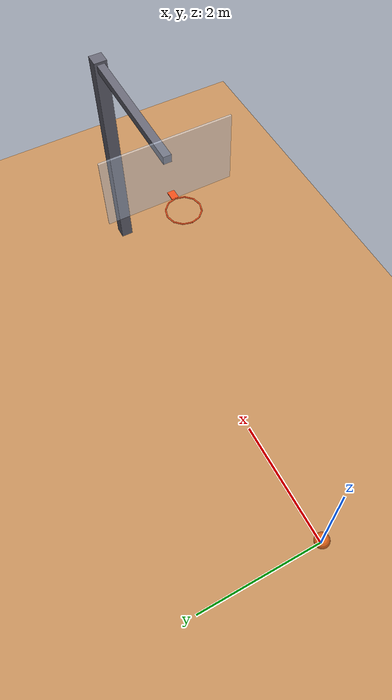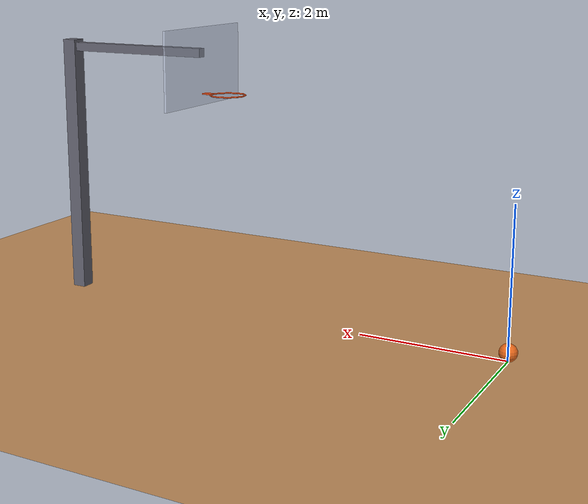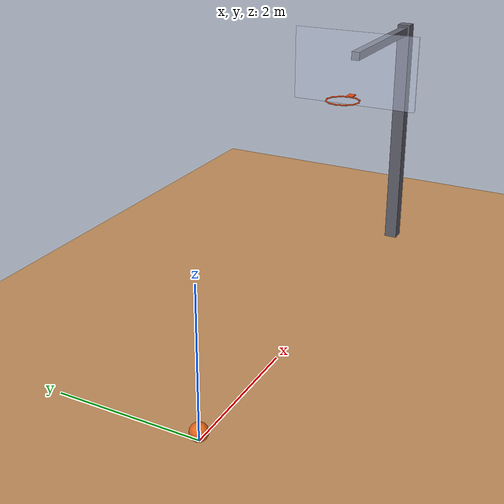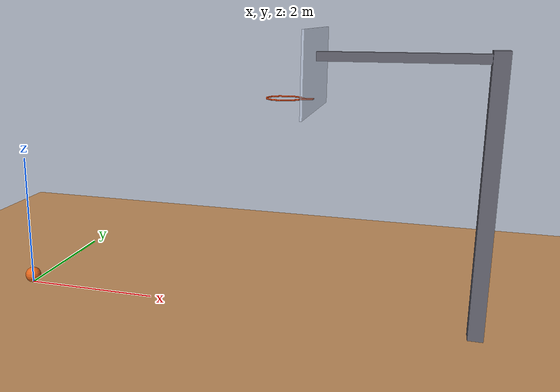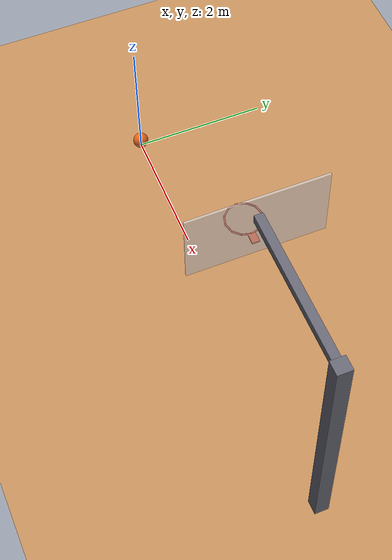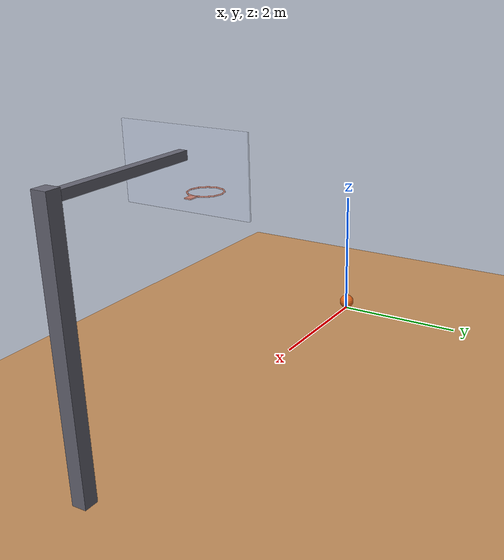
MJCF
<mujoco model="basketball_shot">
  <option timestep="0.002" gravity="0 0 -9.81"/>

  <visual>
    <global offwidth="1280" offheight="720"/>
  </visual>

  <asset>
    <material name="court" rgba="0.75 0.55 0.35 1"/>
    <material name="orange" rgba="0.9 0.4 0.1 1"/>
    <material name="steel" rgba="0.9 0.3 0.1 1"/>
    <material name="glass" rgba="0.85 0.9 1 0.5"/>
    <material name="grey" rgba="0.4 0.4 0.45 1"/>
  </asset>

  <worldbody>
    <light name="sun" pos="2 -3 8" dir="0 0.3 -1" directional="true"/>
    <geom name="floor" type="plane" size="20 20 0.1" material="court" friction="0.8 0.01 0.001"/>

    <body name="ball" pos="0 0 0.12">
      <freejoint name="ball_free"/>
      <inertial pos="0 0 0" mass="0.62" diaginertia="0.00585 0.00585 0.00585"/>
      <geom name="ball" type="sphere" size="0.119" material="orange" friction="0.8 0.01 0.001" solref="0.01 0.3"/>
    </body>

    <body name="hoop" pos="4 0 3.05">
      <geom name="rim_00" type="capsule" size="0.01" fromto="0.2386 0 0 0.2066 0.1193 0" material="steel"/>
      <geom name="rim_01" type="capsule" size="0.01" fromto="0.2066 0.1193 0 0.1193 0.2066 0" material="steel"/>
      <geom name="rim_02" type="capsule" size="0.01" fromto="0.1193 0.2066 0 0 0.2386 0" material="steel"/>
      <geom name="rim_03" type="capsule" size="0.01" fromto="0 0.2386 0 -0.1193 0.2066 0" material="steel"/>
      <geom name="rim_04" type="capsule" size="0.01" fromto="-0.1193 0.2066 0 -0.2066 0.1193 0" material="steel"/>
      <geom name="rim_05" type="capsule" size="0.01" fromto="-0.2066 0.1193 0 -0.2386 0 0" material="steel"/>
      <geom name="rim_06" type="capsule" size="0.01" fromto="-0.2386 0 0 -0.2066 -0.1193 0" material="steel"/>
      <geom name="rim_07" type="capsule" size="0.01" fromto="-0.2066 -0.1193 0 -0.1193 -0.2066 0" material="steel"/>
      <geom name="rim_08" type="capsule" size="0.01" fromto="-0.1193 -0.2066 0 0 -0.2386 0" material="steel"/>
      <geom name="rim_09" type="capsule" size="0.01" fromto="0 -0.2386 0 0.1193 -0.2066 0" material="steel"/>
      <geom name="rim_10" type="capsule" size="0.01" fromto="0.1193 -0.2066 0 0.2066 -0.1193 0" material="steel"/>
      <geom name="rim_11" type="capsule" size="0.01" fromto="0.2066 -0.1193 0 0.2386 0 0" material="steel"/>
      <geom name="hoop_bracket" type="box" size="0.07 0.05 0.008" pos="0.31 0 0" material="steel"/>
    </body>

    <body name="backboard" pos="4.395 0 3.425">
      <geom name="backboard" type="box" size="0.015 0.915 0.525" material="glass"/>
    </body>

    <body name="support" pos="0 0 0">
      <geom name="support_arm" type="box" size="1.05 0.06 0.06" pos="5.46 0 3.6" material="grey"/>
      <geom name="support_pole" type="box" size="0.1 0.1 1.85" pos="6.6 0 1.85" material="grey"/>
    </body>
  </worldbody>

  <keyframe>
    <key name="start" qpos="0 0 0.12 1 0 0 0" qvel="3.182 0 8.497 0 -6 0"/>
  </keyframe>
</mujoco>
